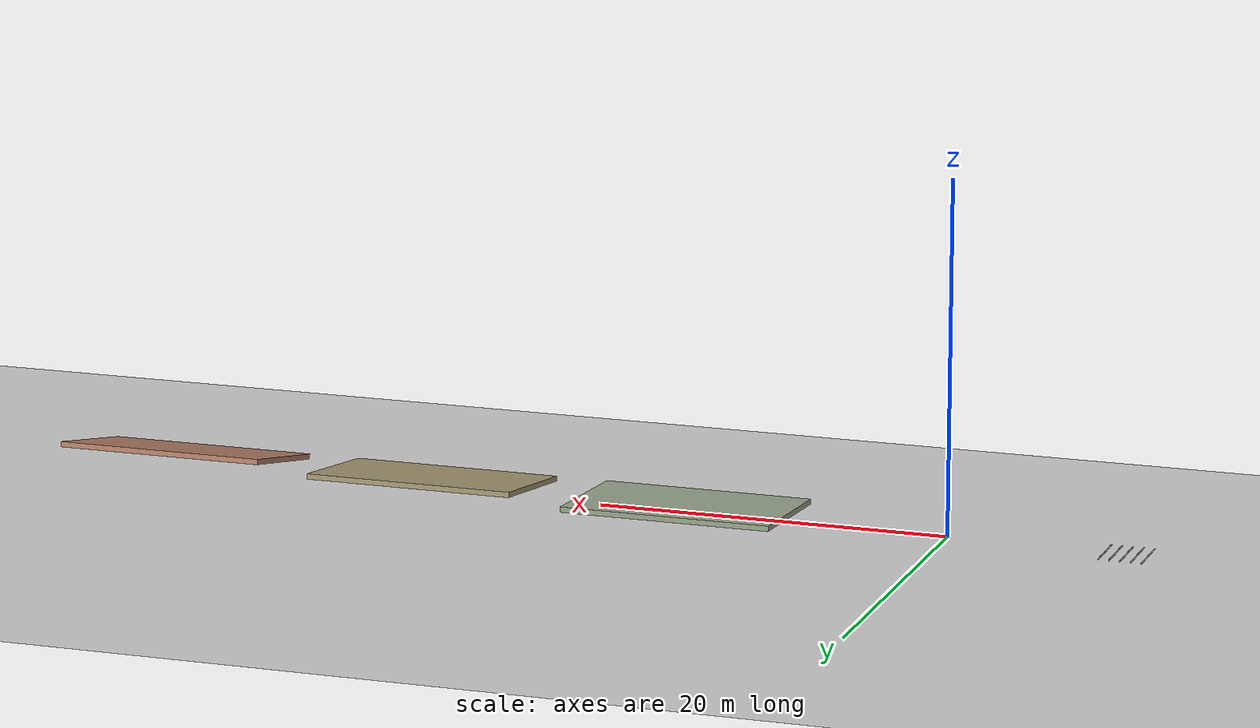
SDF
<?xml version="1.0"?>
<sdf version="1.6">
  <world name="slopes">
    <include><uri>model://sun</uri></include>
    <include><uri>model://ground_plane</uri></include>
    <scene><ambient>0.6 0.6 0.6 1</ambient><background>0.7 0.75 0.8 1</background></scene>
    <physics type="ode">
      <max_step_size>0.001</max_step_size>
      <real_time_update_rate>1000</real_time_update_rate>
      <ode><solver><iters>150</iters></solver></ode>
    </physics>
    <plugin name="gazebo_ros_state" filename="libgazebo_ros_state.so">
      <ros><namespace>/gazebo</namespace></ros>
      <update_rate>50.0</update_rate>
    </plugin>

    <model name="slope_04">
      <static>true</static>
      <pose>15 0 0.4387 0.0698 0 0</pose>
      <link name="link">
        <collision name="c">
          <geometry><box><size>12 8 0.3</size></box></geometry>
          <surface><friction><ode><mu>1.0</mu><mu2>1.0</mu2></ode></friction></surface>
        </collision>
        <visual name="v">
          <geometry><box><size>12 8 0.3</size></box></geometry>
          <material><ambient>0.55 0.6 0.5 1</ambient><diffuse>0.6 0.65 0.55 1</diffuse></material>
        </visual>
      </link>
    </model>

    <model name="slope_08">
      <static>true</static>
      <pose>30 0 0.7152 0.1396 0 0</pose>
      <link name="link">
        <collision name="c">
          <geometry><box><size>12 8 0.3</size></box></geometry>
          <surface><friction><ode><mu>1.0</mu><mu2>1.0</mu2></ode></friction></surface>
        </collision>
        <visual name="v">
          <geometry><box><size>12 8 0.3</size></box></geometry>
          <material><ambient>0.6 0.55 0.4 1</ambient><diffuse>0.65 0.6 0.45 1</diffuse></material>
        </visual>
      </link>
    </model>

    <model name="slope_12">
      <static>true</static>
      <pose>45 0 0.9884 0.2094 0 0</pose>
      <link name="link">
        <collision name="c">
          <geometry><box><size>12 8 0.3</size></box></geometry>
          <surface><friction><ode><mu>1.0</mu><mu2>1.0</mu2></ode></friction></surface>
        </collision>
        <visual name="v">
          <geometry><box><size>12 8 0.3</size></box></geometry>
          <material><ambient>0.65 0.45 0.35 1</ambient><diffuse>0.7 0.5 0.4 1</diffuse></material>
        </visual>
      </link>
    </model>

    <!-- Bumps: half-buried cylinders across the path, 2 cm proud of the floor. -->
    <model name="bumps">
      <static>true</static>
      <pose>-10 0 -0.02 0 0 0</pose>
      <link name="link">
        <collision name="b0"><pose>-1.2 0 0 1.5708 0 0</pose><geometry><cylinder><radius>0.04</radius><length>3</length></cylinder></geometry></collision>
        <visual name="v0"><pose>-1.2 0 0 1.5708 0 0</pose><geometry><cylinder><radius>0.04</radius><length>3</length></cylinder></geometry></visual>
        <collision name="b1"><pose>-0.6 0 0 1.5708 0 0</pose><geometry><cylinder><radius>0.04</radius><length>3</length></cylinder></geometry></collision>
        <visual name="v1"><pose>-0.6 0 0 1.5708 0 0</pose><geometry><cylinder><radius>0.04</radius><length>3</length></cylinder></geometry></visual>
        <collision name="b2"><pose>0 0 0 1.5708 0 0</pose><geometry><cylinder><radius>0.04</radius><length>3</length></cylinder></geometry></collision>
        <visual name="v2"><pose>0 0 0 1.5708 0 0</pose><geometry><cylinder><radius>0.04</radius><length>3</length></cylinder></geometry></visual>
        <collision name="b3"><pose>0.6 0 0 1.5708 0 0</pose><geometry><cylinder><radius>0.04</radius><length>3</length></cylinder></geometry></collision>
        <visual name="v3"><pose>0.6 0 0 1.5708 0 0</pose><geometry><cylinder><radius>0.04</radius><length>3</length></cylinder></geometry></visual>
        <collision name="b4"><pose>1.2 0 0 1.5708 0 0</pose><geometry><cylinder><radius>0.04</radius><length>3</length></cylinder></geometry></collision>
        <visual name="v4"><pose>1.2 0 0 1.5708 0 0</pose><geometry><cylinder><radius>0.04</radius><length>3</length></cylinder></geometry></visual>
      </link>
    </model>
  </world>
</sdf>
